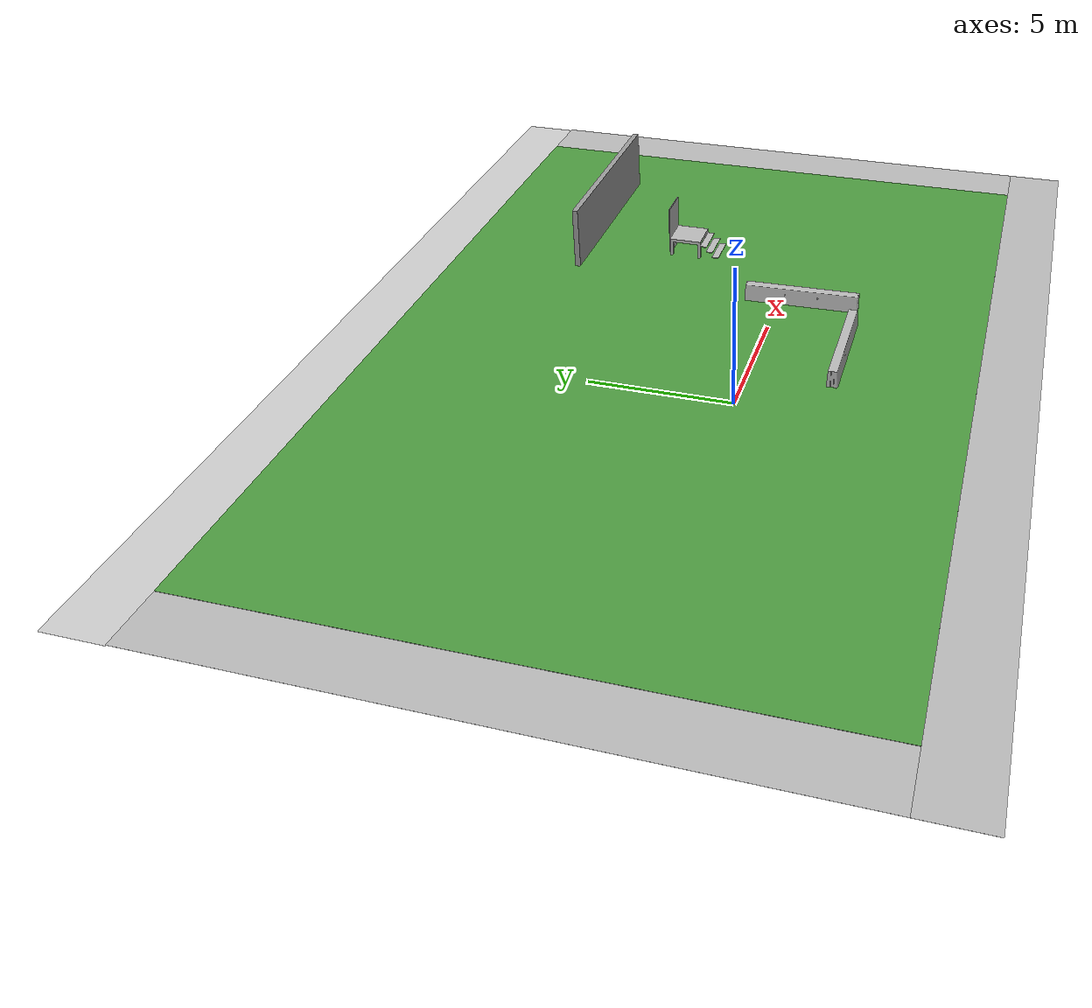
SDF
<sdf version="1.4">
  <world name="default">
    <light name="sun" type="directional">
      <cast_shadows>1</cast_shadows>
      <pose>0 0 10 0 -0 0</pose>
      <diffuse>0.8 0.8 0.8 1</diffuse>
      <specular>0.2 0.2 0.2 1</specular>
      <attenuation>
        <range>1000</range>
        <constant>0.9</constant>
        <linear>0.01</linear>
        <quadratic>0.001</quadratic>
      </attenuation>
      <direction>-0.5 0.1 -0.9</direction>
    </light>
    <physics type="ode">
      <max_step_size>0.001</max_step_size>
      <real_time_factor>1</real_time_factor>
      <!-- set to 0 run as fast as posible. default 1000 -->
      <real_time_update_rate>0</real_time_update_rate>
      <gravity>0 0 -9.8</gravity>
    </physics>
    <scene>
      <ambient>0.4 0.4 0.4 1</ambient>
      <background>0.7 0.7 0.7 1</background>
      <shadows>1</shadows>
    </scene>
    <gui fullscreen="0">
      <camera name="user_camera">
        <pose>1.49016 -3.72367 3.62379 -2.88294e-17 0.273797 1.4042</pose>
        <view_controller>orbit</view_controller>
      </camera>
    </gui>
  <model name="robocup_3Dsim_field_0">
    <pose frame="">2.05927 2.44023 0.5 0 -0 0</pose>
    <static>1</static>
    <link name="RoboCup 3D Simulation Field::field">
      <pose frame="">0 0 0.01 0 -0 0</pose>
      <collision name="collision">
        <geometry>
          <plane>
            <normal>0 0 1</normal>
            <size>30 20</size>
          </plane>
        </geometry>
        <surface>
          <friction>
            <ode>
              <mu>100</mu>
              <mu2>50</mu2>
            </ode>
          </friction>
          <contact>
            <ode />
          </contact>
          <bounce />
        </surface>
        <max_contacts>10</max_contacts>
      </collision>
      <visual name="base1">
        <pose frame="">0 11 0.001 0 -0 0</pose>
        <cast_shadows>0</cast_shadows>
        <geometry>
          <plane>
            <normal>0 0 1</normal>
            <size>34 2</size>
          </plane>
        </geometry>
        <material>
          <script>
            <uri>model://robocup_3Dsim_field/materials/scripts/</uri>
            <uri>model://robocup_3Dsim_field/materials/textures/</uri>
            <name>RoboCup/FieldBorder</name>
          </script>
        </material>
      </visual>
      <visual name="base2">
        <pose frame="">0 -11 0.001 0 -0 0</pose>
        <cast_shadows>0</cast_shadows>
        <geometry>
          <plane>
            <normal>0 0 1</normal>
            <size>34 2</size>
          </plane>
        </geometry>
        <material>
          <script>
            <uri>model://robocup_3Dsim_field/materials/scripts/</uri>
            <uri>model://robocup_3Dsim_field/materials/textures/</uri>
            <name>RoboCup/FieldBorder</name>
          </script>
        </material>
      </visual>
      <visual name="base3">
        <pose frame="">16 0 0.001 0 -0 0</pose>
        <cast_shadows>0</cast_shadows>
        <geometry>
          <plane>
            <normal>0 0 1</normal>
            <size>2 20</size>
          </plane>
        </geometry>
        <material>
          <script>
            <uri>model://robocup_3Dsim_field/materials/scripts/</uri>
            <uri>model://robocup_3Dsim_field/materials/textures/</uri>
            <name>RoboCup/FieldBorder</name>
          </script>
        </material>
      </visual>
      <visual name="base4">
        <pose frame="">-16 0 0.001 0 -0 0</pose>
        <cast_shadows>0</cast_shadows>
        <geometry>
          <plane>
            <normal>0 0 1</normal>
            <size>2 20</size>
          </plane>
        </geometry>
        <material>
          <script>
            <uri>model://robocup_3Dsim_field/materials/scripts/</uri>
            <uri>model://robocup_3Dsim_field/materials/textures/</uri>
            <name>RoboCup/FieldBorder</name>
          </script>
        </material>
      </visual>
      <visual name="carpet">
        <cast_shadows>0</cast_shadows>
        <geometry>
          <plane>
            <normal>0 0 1</normal>
            <size>30 20</size>
          </plane>
        </geometry>
        <material>
          <script>
            <uri>model://robocup_3Dsim_field/materials/scripts/</uri>
            <uri>model://robocup_3Dsim_field/materials/textures/</uri>
            <name>RoboCup/Grass</name>
          </script>
        </material>
      </visual>
      <self_collide>0</self_collide>
      <kinematic>0</kinematic>
      <gravity>1</gravity>
    </link>
  </model>

<model name="grey_wall">
    <static>1</static>
    <link name="link">
      <pose frame="">0 0 1.4 0 -0 0</pose>
      <collision name="collision">
        <geometry>
          <box>
            <size>7.5 0.2 2.8</size>
          </box>
        </geometry>
        <max_contacts>10</max_contacts>
        <surface>
          <bounce />
          <friction>
            <ode />
          </friction>
          <contact>
            <ode />
          </contact>
        </surface>
      </collision>
      <visual name="visual">
        <cast_shadows>0</cast_shadows>
        <geometry>
          <box>
            <size>7.5 0.2 2.8</size>
          </box>
        </geometry>
        <material>
          <script>
            <uri>model://grey_wall/materials/scripts</uri>
            <uri>model://grey_wall/materials/textures</uri>
            <name>vrc/grey_wall</name>
          </script>
        </material>
      </visual>
      <velocity_decay>
        <linear>0</linear>
        <angular>0</angular>
      </velocity_decay>
      <self_collide>0</self_collide>
      <kinematic>0</kinematic>
      <gravity>1</gravity>
    </link>
    <pose frame="">10.402 7.71769 0 0 -0 0</pose>
  </model><model name="jersey_barrier">
    <static>1</static>
    <link name="link">
      <visual name="visual">
        <geometry>
          <mesh>
            <uri>model://jersey_barrier/meshes/jersey_barrier.dae</uri>
          </mesh>
        </geometry>
      </visual>
      <collision name="upright">
        <pose frame="">0 0 0.5715 0 -0 0</pose>
        <geometry>
          <box>
            <size>4.06542 0.3063 1.143</size>
          </box>
        </geometry>
        <max_contacts>10</max_contacts>
        <surface>
          <bounce />
          <friction>
            <ode />
          </friction>
          <contact>
            <ode />
          </contact>
        </surface>
      </collision>
      <collision name="base">
        <pose frame="">0 0 0.032258 0 -0 0</pose>
        <geometry>
          <box>
            <size>4.06542 0.8107 0.064516</size>
          </box>
        </geometry>
        <max_contacts>10</max_contacts>
        <surface>
          <bounce />
          <friction>
            <ode />
          </friction>
          <contact>
            <ode />
          </contact>
        </surface>
      </collision>
      <collision name="base2">
        <pose frame="">0 0 0.1 0 -0 0</pose>
        <geometry>
          <box>
            <size>4.06542 0.65 0.1</size>
          </box>
        </geometry>
        <max_contacts>10</max_contacts>
        <surface>
          <bounce />
          <friction>
            <ode />
          </friction>
          <contact>
            <ode />
          </contact>
        </surface>
      </collision>
      <collision name="base3">
        <pose frame="">0 0 0.2 0 -0 0</pose>
        <geometry>
          <box>
            <size>4.06542 0.5 0.1</size>
          </box>
        </geometry>
        <max_contacts>10</max_contacts>
        <surface>
          <bounce />
          <friction>
            <ode />
          </friction>
          <contact>
            <ode />
          </contact>
        </surface>
      </collision>
      <collision name="left-angle">
        <pose frame="">0 -0.224 0.2401 0.9 -0 0</pose>
        <geometry>
          <box>
            <size>4.06542 0.5 0.064516</size>
          </box>
        </geometry>
        <max_contacts>10</max_contacts>
        <surface>
          <bounce />
          <friction>
            <ode />
          </friction>
          <contact>
            <ode />
          </contact>
        </surface>
      </collision>
      <collision name="right-angle">
        <pose frame="">0 0.224 0.2401 -0.9 0 0</pose>
        <geometry>
          <box>
            <size>4.06542 0.5 0.064516</size>
          </box>
        </geometry>
        <max_contacts>10</max_contacts>
        <surface>
          <bounce />
          <friction>
            <ode />
          </friction>
          <contact>
            <ode />
          </contact>
        </surface>
      </collision>
      <velocity_decay>
        <linear>0</linear>
        <angular>0</angular>
      </velocity_decay>
      <self_collide>0</self_collide>
      <kinematic>0</kinematic>
      <gravity>1</gravity>
    </link>
    <pose frame="">3 -3 0 0 -0 0</pose>
  </model><model name="nist_stairs_120">
    <static>1</static>
    <link name="nist_stairs_120_link">
      <pose frame="">0 0 0 0 -0 0</pose>
      <collision name="collision">
        <geometry>
          <mesh>
            <uri>model://nist_stairs_120/meshes/nist_stairs_120.dae</uri>
            <scale>1 1 1</scale>
          </mesh>
        </geometry>
        <max_contacts>10</max_contacts>
        <surface>
          <bounce />
          <friction>
            <ode />
          </friction>
          <contact>
            <ode />
          </contact>
        </surface>
      </collision>
      <visual name="visual">
        <geometry>
          <mesh>
            <uri>model://nist_stairs_120/meshes/nist_stairs_120.dae</uri>
            <scale>1 1 1</scale>
          </mesh>
        </geometry>
      </visual>
      <velocity_decay>
        <linear>0</linear>
        <angular>0</angular>
      </velocity_decay>
      <self_collide>0</self_collide>
      <kinematic>0</kinematic>
      <gravity>1</gravity>
    </link>
    <pose frame="">9.01164 2.82223 0 0 -0 0</pose>
  </model><model name="nist_maze_wall_240">
    <static>1</static>
    <link name="nist__maze_wall_240_link">
      <pose frame="">0 0 0 0 -0 0</pose>
      <collision name="collision">
        <geometry>
          <mesh>
            <uri>model://nist_maze_wall_240/meshes/nist_maze_wall_240.dae</uri>
            <scale>1 1 1</scale>
          </mesh>
        </geometry>
        <max_contacts>10</max_contacts>
        <surface>
          <bounce />
          <friction>
            <ode />
          </friction>
          <contact>
            <ode />
          </contact>
        </surface>
      </collision>
      <visual name="visual">
        <geometry>
          <mesh>
            <uri>model://nist_maze_wall_240/meshes/nist_maze_wall_240.dae</uri>
            <scale>1 1 1</scale>
          </mesh>
        </geometry>
      </visual>
      <velocity_decay>
        <linear>0</linear>
        <angular>0</angular>
      </velocity_decay>
      <self_collide>0</self_collide>
      <kinematic>0</kinematic>
      <gravity>1</gravity>
    </link>
    <pose frame="">9 4 0 0 -0 0</pose>
  </model><model name="nist_elevated_floor_120">
    <static>1</static>
    <link name="nist_elevated_floor_120">
      <pose frame="">0 0 0 0 -0 0</pose>
      <collision name="collision">
        <geometry>
          <mesh>
            <uri>model://nist_elevated_floor_120/meshes/nist_elevated_floor_120.dae</uri>
            <scale>1 1 1</scale>
          </mesh>
        </geometry>
        <max_contacts>10</max_contacts>
        <surface>
          <bounce />
          <friction>
            <ode />
          </friction>
          <contact>
            <ode />
          </contact>
        </surface>
      </collision>
      <visual name="visual">
        <geometry>
          <mesh>
            <uri>model://nist_elevated_floor_120/meshes/nist_elevated_floor_120.dae</uri>
            <scale>1 1 1</scale>
          </mesh>
        </geometry>
      </visual>
      <velocity_decay>
        <linear>0</linear>
        <angular>0</angular>
      </velocity_decay>
      <self_collide>0</self_collide>
      <kinematic>0</kinematic>
      <gravity>1</gravity>
    </link>
    <pose frame="">9 4 0 0 -0 0</pose>
  </model><model name="nist">
    <static>1</static>
    <link name="nist_maze_wall_triple_holes_120_link">
      <pose frame="">0 0 0 0 -0 0</pose>
      <collision name="collision">
        <geometry>
          <mesh>
            <uri>model://nist_maze_wall_triple_holes_120/meshes/nist_maze_wall_triple_holes_120.dae</uri>
            <scale>1 1 1</scale>
          </mesh>
        </geometry>
        <max_contacts>10</max_contacts>
        <surface>
          <bounce />
          <friction>
            <ode />
          </friction>
          <contact>
            <ode />
          </contact>
        </surface>
      </collision>
      <visual name="visual">
        <geometry>
          <mesh>
            <uri>model://nist_maze_wall_triple_holes_120/meshes/nist_maze_wall_triple_holes_120.dae</uri>
            <scale>1 1 1</scale>
          </mesh>
        </geometry>
      </visual>
      <velocity_decay>
        <linear>0</linear>
        <angular>0</angular>
      </velocity_decay>
      <self_collide>0</self_collide>
      <kinematic>0</kinematic>
      <gravity>1</gravity>
    </link>
    <pose frame="">9.02578 4.02961 1.2 0 -0 0</pose>
  </model><model name="jersey_barrier_0">
    <static>1</static>
    <link name="link">
      <visual name="visual">
        <geometry>
          <mesh>
            <uri>model://jersey_barrier/meshes/jersey_barrier.dae</uri>
          </mesh>
        </geometry>
      </visual>
      <collision name="upright">
        <pose frame="">0 0 0.5715 0 -0 0</pose>
        <geometry>
          <box>
            <size>4.06542 0.3063 1.143</size>
          </box>
        </geometry>
        <max_contacts>10</max_contacts>
        <surface>
          <bounce />
          <friction>
            <ode />
          </friction>
          <contact>
            <ode />
          </contact>
        </surface>
      </collision>
      <collision name="base">
        <pose frame="">0 0 0.032258 0 -0 0</pose>
        <geometry>
          <box>
            <size>4.06542 0.8107 0.064516</size>
          </box>
        </geometry>
        <max_contacts>10</max_contacts>
        <surface>
          <bounce />
          <friction>
            <ode />
          </friction>
          <contact>
            <ode />
          </contact>
        </surface>
      </collision>
      <collision name="base2">
        <pose frame="">0 0 0.1 0 -0 0</pose>
        <geometry>
          <box>
            <size>4.06542 0.65 0.1</size>
          </box>
        </geometry>
        <max_contacts>10</max_contacts>
        <surface>
          <bounce />
          <friction>
            <ode />
          </friction>
          <contact>
            <ode />
          </contact>
        </surface>
      </collision>
      <collision name="base3">
        <pose frame="">0 0 0.2 0 -0 0</pose>
        <geometry>
          <box>
            <size>4.06542 0.5 0.1</size>
          </box>
        </geometry>
        <max_contacts>10</max_contacts>
        <surface>
          <bounce />
          <friction>
            <ode />
          </friction>
          <contact>
            <ode />
          </contact>
        </surface>
      </collision>
      <collision name="left-angle">
        <pose frame="">0 -0.224 0.2401 0.9 -0 0</pose>
        <geometry>
          <box>
            <size>4.06542 0.5 0.064516</size>
          </box>
        </geometry>
        <max_contacts>10</max_contacts>
        <surface>
          <bounce />
          <friction>
            <ode />
          </friction>
          <contact>
            <ode />
          </contact>
        </surface>
      </collision>
      <collision name="right-angle">
        <pose frame="">0 0.224 0.2401 -0.9 0 0</pose>
        <geometry>
          <box>
            <size>4.06542 0.5 0.064516</size>
          </box>
        </geometry>
        <max_contacts>10</max_contacts>
        <surface>
          <bounce />
          <friction>
            <ode />
          </friction>
          <contact>
            <ode />
          </contact>
        </surface>
      </collision>
      <velocity_decay>
        <linear>0</linear>
        <angular>0</angular>
      </velocity_decay>
      <self_collide>0</self_collide>
      <kinematic>0</kinematic>
      <gravity>1</gravity>
    </link>
    <pose frame="">6 -1 0 0 -0 1.6</pose>
  </model></world>
</sdf>
